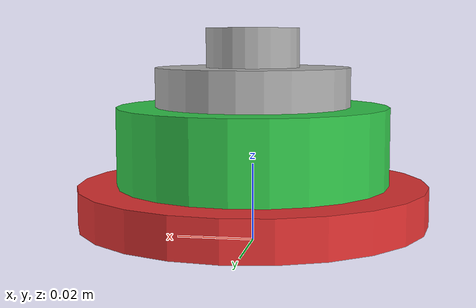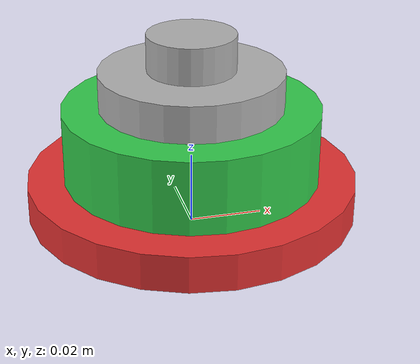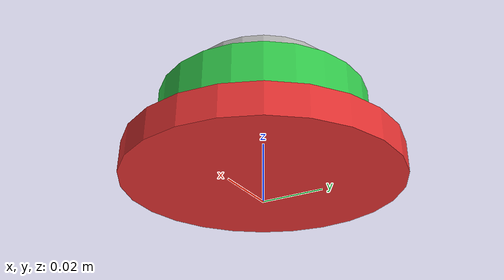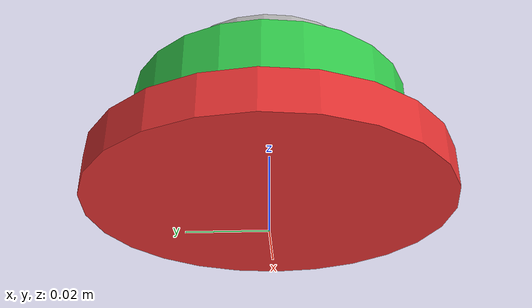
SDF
<?xml version="1.0"?>
<sdf version="1.6">
  <model name="zimmer_suction">
    <static>false</static>
    <link name="suction_body">
      <pose>0 0 0.05 0 0 0</pose>
      <inertial>
        <mass>0.15</mass>
        <inertia>
          <ixx>5e-5</ixx><iyy>5e-5</iyy><izz>6e-5</izz>
        </inertia>
      </inertial>

      <!-- 金属螺纹连接头 -->
      <visual name="thread">
        <pose>0 0 0 0 0 0</pose>
        <geometry>
          <cylinder><radius>0.012</radius><length>0.01</length></cylinder>
        </geometry>
        <material>
          <ambient>0.7 0.7 0.7 1</ambient>
          <diffuse>0.7 0.7 0.7 1</diffuse>
        </material>
      </visual>

      <!-- 金属适配器 -->
      <visual name="adapter">
        <pose>0 0 -0.01 0 0 0</pose>
        <geometry>
          <cylinder><radius>0.025</radius><length>0.01</length></cylinder>
        </geometry>
        <material>
          <ambient>0.7 0.7 0.7 1</ambient>
          <diffuse>0.7 0.7 0.7 1</diffuse>
        </material>
      </visual>

      <!-- 绿色波纹吸盘 -->
      <visual name="bellows">
        <pose>0 0 -0.025 0 0 0</pose>
        <geometry>
          <cylinder><radius>0.035</radius><length>0.02</length></cylinder>
        </geometry>
        <material>
          <ambient>0.2 0.8 0.3 1</ambient>
          <diffuse>0.2 0.8 0.3 1</diffuse>
        </material>
      </visual>

      <!-- 红色底部吸盘垫 -->
      <visual name="pad">
        <pose>0 0 -0.04 0 0 0</pose>
        <geometry>
          <cylinder><radius>0.045</radius><length>0.01</length></cylinder>
        </geometry>
        <material>
          <ambient>0.9 0.2 0.2 1</ambient>
          <diffuse>0.9 0.2 0.2 1</diffuse>
        </material>
      </visual>

      <collision name="collision">
        <pose>0 0 -0.04 0 0 0</pose>
        <geometry>
          <cylinder><radius>0.045</radius><length>0.01</length></cylinder>
        </geometry>
      </collision>
    </link>
  </model>
</sdf>
